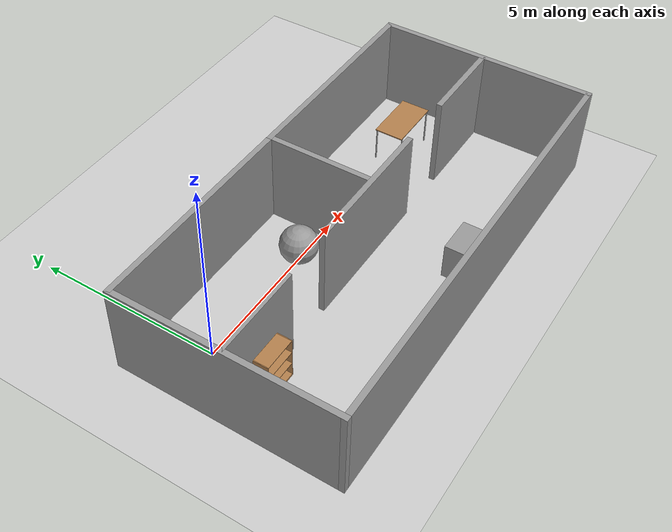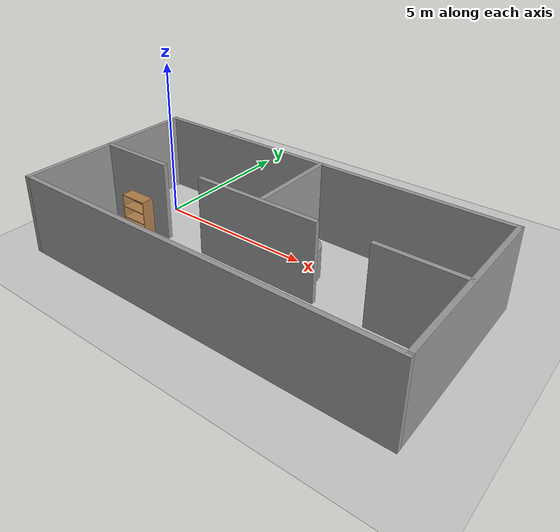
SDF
<sdf version="1.7">
 <world name="default">
  <light name="sun" type="directional">
   <pose>0 0 10 0 -0 0</pose>
   <diffuse>0.8 0.8 0.8 1</diffuse>
   <specular>0.2 0.2 0.2 1</specular>
   <attenuation>
    <range>1000</range>
    <constant>0.9</constant>
    <linear>0.01</linear>
    <quadratic>0.001</quadratic>
   </attenuation>
   <direction>-0.5 0.1 -0.9</direction>
   <spot><inner_angle>0</inner_angle><outer_angle>0</outer_angle><falloff>0</falloff></spot>
  </light>
  <model name="ground_plane">
   <static>1</static>
   <link name="link">
    <collision name="collision">
     <geometry><plane><normal>0 0 1</normal><size>100 100</size></plane></geometry>
     <surface><friction><ode><mu>100</mu><mu2>50</mu2></ode></friction></surface>
    </collision>
    <visual name="visual">
     <cast_shadows>0</cast_shadows>
     <geometry><plane><normal>0 0 1</normal><size>100 100</size></plane></geometry>
     <material>
      <script><uri>file://media/materials/scripts/gazebo.material</uri><name>Gazebo/Grey</name></script>
     </material>
    </visual>
   </link>
  </model>
  <gravity>0 0 -9.8</gravity>
  <magnetic_field>6e-06 2.3e-05 -4.2e-05</magnetic_field>
  <atmosphere type="adiabatic"/>
  <physics type="ode">
   <max_step_size>0.001</max_step_size>
   <real_time_factor>1</real_time_factor>
   <real_time_update_rate>1000</real_time_update_rate>
  </physics>
  <scene><ambient>0.4 0.4 0.4 1</ambient><background>0.7 0.7 0.7 1</background><shadows>1</shadows></scene>
  <audio><device>default</device></audio>
  <spherical_coordinates>
   <surface_model>EARTH_WGS84</surface_model>
   <latitude_deg>0</latitude_deg>
   <longitude_deg>0</longitude_deg>
   <elevation>0</elevation>
   <heading_deg>0</heading_deg>
  </spherical_coordinates>
  <model name="threerooms">
   <pose>5.56444 0.092078 0 0 -0 0</pose>
   <link name="Wall_21">
    <collision name="Wall_21_Collision">
     <geometry><box><size>3 0.15 2.5</size></box></geometry>
     <pose>0 0 1.25 0 -0 0</pose>
    </collision>
    <visual name="Wall_21_Visual">
     <pose>0 0 1.25 0 -0 0</pose>
     <geometry><box><size>3 0.15 2.5</size></box></geometry>
     <material>
      <script><uri>file://media/materials/scripts/gazebo.material</uri><name>Gazebo/Grey</name></script>
      <ambient>1 1 1 1</ambient>
     </material>
     <meta><layer>0</layer></meta>
    </visual>
    <pose>-0.909238 0.00585 0 0 -0 1.5708</pose>
   </link>
   <link name="Wall_22">
    <collision name="Wall_22_Collision">
     <geometry><box><size>6 0.15 2.5</size></box></geometry>
     <pose>0 0 1.25 0 -0 0</pose>
    </collision>
    <visual name="Wall_22_Visual">
     <pose>0 0 1.25 0 -0 0</pose>
     <geometry><box><size>6 0.15 2.5</size></box></geometry>
     <material>
      <script><uri>file://media/materials/scripts/gazebo.material</uri><name>Gazebo/Grey</name></script>
      <ambient>1 1 1 1</ambient>
     </material>
     <meta><layer>0</layer></meta>
    </visual>
    <pose>2.01576 1.43085 0 0 -0 0</pose>
   </link>
   <link name="Wall_23">
    <collision name="Wall_23_Collision">
     <geometry><box><size>6 0.15 2.5</size></box></geometry>
     <pose>0 0 1.25 0 -0 0</pose>
    </collision>
    <visual name="Wall_23_Visual">
     <pose>0 0 1.25 0 -0 0</pose>
     <geometry><box><size>6 0.15 2.5</size></box></geometry>
     <material>
      <script><uri>file://media/materials/scripts/gazebo.material</uri><name>Gazebo/Grey</name></script>
      <ambient>1 1 1 1</ambient>
     </material>
     <meta><layer>0</layer></meta>
    </visual>
    <pose>4.94076 -1.49415 0 0 -0 -1.5708</pose>
   </link>
   <link name="Wall_24">
    <collision name="Wall_24_Collision">
     <geometry><box><size>12 0.15 2.5</size></box></geometry>
     <pose>0 0 1.25 0 -0 0</pose>
    </collision>
    <visual name="Wall_24_Visual">
     <pose>0 0 1.25 0 -0 0</pose>
     <geometry><box><size>12 0.15 2.5</size></box></geometry>
     <material>
      <script><uri>file://media/materials/scripts/gazebo.material</uri><name>Gazebo/Grey</name></script>
      <ambient>1 1 1 1</ambient>
     </material>
     <meta><layer>0</layer></meta>
    </visual>
    <pose>-0.984238 -4.41915 0 0 -0 3.14159</pose>
   </link>
   <link name="Wall_25">
    <collision name="Wall_25_Collision">
     <geometry><box><size>6 0.15 2.5</size></box></geometry>
     <pose>0 0 1.25 0 -0 0</pose>
    </collision>
    <visual name="Wall_25_Visual">
     <pose>0 0 1.25 0 -0 0</pose>
     <geometry><box><size>6 0.15 2.5</size></box></geometry>
     <material>
      <script><uri>file://media/materials/scripts/gazebo.material</uri><name>Gazebo/Grey</name></script>
      <ambient>1 1 1 1</ambient>
     </material>
     <meta><layer>0</layer></meta>
    </visual>
    <pose>-6.90924 -1.49415 0 0 -0 1.5708</pose>
   </link>
   <link name="Wall_26">
    <collision name="Wall_26_Collision">
     <geometry><box><size>6.15 0.15 2.5</size></box></geometry>
     <pose>0 0 1.25 0 -0 0</pose>
    </collision>
    <visual name="Wall_26_Visual">
     <pose>0 0 1.25 0 -0 0</pose>
     <geometry><box><size>6.15 0.15 2.5</size></box></geometry>
     <material>
      <script><uri>file://media/materials/scripts/gazebo.material</uri><name>Gazebo/Grey</name></script>
      <ambient>1 1 1 1</ambient>
     </material>
     <meta><layer>0</layer></meta>
    </visual>
    <pose>-3.90924 1.43085 0 0 -0 0</pose>
   </link>
   <link name="Wall_28">
    <collision name="Wall_28_Collision">
     <geometry><box><size>2.5 0.15 2.5</size></box></geometry>
     <pose>0 0 1.25 0 -0 0</pose>
    </collision>
    <visual name="Wall_28_Visual">
     <pose>0 0 1.25 0 -0 0</pose>
     <geometry><box><size>2.5 0.15 2.5</size></box></geometry>
     <material>
      <script><uri>file://media/materials/scripts/gazebo.material</uri><name>Gazebo/Grey</name></script>
      <ambient>1 1 1 1</ambient>
     </material>
     <meta><layer>0</layer></meta>
    </visual>
    <pose>-5.67703 -1.47607 0 0 -0 0</pose>
   </link>
   <link name="Wall_30">
    <collision name="Wall_30_Collision">
     <geometry><box><size>4 0.15 2.5</size></box></geometry>
     <pose>0 0 1.25 0 -0 0</pose>
    </collision>
    <visual name="Wall_30_Visual">
     <pose>0 0 1.25 0 -0 0</pose>
     <geometry><box><size>4 0.15 2.5</size></box></geometry>
     <material>
      <script><uri>file://media/materials/scripts/gazebo.material</uri><name>Gazebo/Grey</name></script>
      <ambient>1 1 1 1</ambient>
     </material>
     <meta><layer>0</layer></meta>
    </visual>
    <pose>-1.07921 -1.44565 0 0 -0 0</pose>
   </link>
   <link name="Wall_33">
    <collision name="Wall_33_Collision">
     <geometry><box><size>2.5 0.15 2.5</size></box></geometry>
     <pose>0 0 1.25 0 -0 0</pose>
    </collision>
    <visual name="Wall_33_Visual">
     <pose>0 0 1.25 0 -0 0</pose>
     <geometry><box><size>2.5 0.15 2.5</size></box></geometry>
     <material>
      <script><uri>file://media/materials/scripts/gazebo.material</uri><name>Gazebo/Grey</name></script>
      <ambient>1 1 1 1</ambient>
     </material>
     <meta><layer>0</layer></meta>
    </visual>
    <pose>3.69892 -1.43044 0 0 -0 3.14159</pose>
   </link>
   <static>1</static>
  </model>
  <model name="bookshelf">
   <static>1</static>
   <link name="link">
    <inertial><mass>1</mass></inertial>
    <collision name="back">
     <pose>0 0.005 0.6 0 -0 0</pose>
     <geometry><box><size>0.9 0.01 1.2</size></box></geometry>
    </collision>
    <visual name="visual1">
     <pose>0 0.005 0.6 0 -0 0</pose>
     <geometry><box><size>0.9 0.01 1.2</size></box></geometry>
     <material>
      <script><uri>file://media/materials/scripts/gazebo.material</uri><name>Gazebo/Wood</name></script>
     </material>
    </visual>
    <collision name="left_side">
     <pose>0.45 -0.195 0.6 0 -0 0</pose>
     <geometry><box><size>0.02 0.4 1.2</size></box></geometry>
    </collision>
    <visual name="visual2">
     <pose>0.45 -0.195 0.6 0 -0 0</pose>
     <geometry><box><size>0.02 0.4 1.2</size></box></geometry>
     <material>
      <script><uri>file://media/materials/scripts/gazebo.material</uri><name>Gazebo/Wood</name></script>
     </material>
    </visual>
    <collision name="right_side">
     <pose>-0.45 -0.195 0.6 0 -0 0</pose>
     <geometry><box><size>0.02 0.4 1.2</size></box></geometry>
    </collision>
    <visual name="visual3">
     <pose>-0.45 -0.195 0.6 0 -0 0</pose>
     <geometry><box><size>0.02 0.4 1.2</size></box></geometry>
     <material>
      <script><uri>file://media/materials/scripts/gazebo.material</uri><name>Gazebo/Wood</name></script>
     </material>
    </visual>
    <collision name="bottom">
     <pose>0 -0.195 0.03 0 -0 0</pose>
     <geometry><box><size>0.88 0.4 0.06</size></box></geometry>
    </collision>
    <visual name="visual4">
     <pose>0 -0.195 0.03 0 -0 0</pose>
     <geometry><box><size>0.88 0.4 0.06</size></box></geometry>
     <material>
      <script><uri>file://media/materials/scripts/gazebo.material</uri><name>Gazebo/Wood</name></script>
     </material>
    </visual>
    <collision name="top">
     <pose>0 -0.195 1.19 0 -0 0</pose>
     <geometry><box><size>0.88 0.4 0.02</size></box></geometry>
    </collision>
    <visual name="visual5">
     <pose>0 -0.195 1.19 0 -0 0</pose>
     <geometry><box><size>0.88 0.4 0.02</size></box></geometry>
     <material>
      <script><uri>file://media/materials/scripts/gazebo.material</uri><name>Gazebo/Wood</name></script>
     </material>
    </visual>
    <collision name="low_shelf">
     <pose>0 -0.195 0.43 0 -0 0</pose>
     <geometry><box><size>0.88 0.4 0.02</size></box></geometry>
    </collision>
    <visual name="visual6">
     <pose>0 -0.195 0.43 0 -0 0</pose>
     <geometry><box><size>0.88 0.4 0.02</size></box></geometry>
     <material>
      <script><uri>file://media/materials/scripts/gazebo.material</uri><name>Gazebo/Wood</name></script>
     </material>
    </visual>
    <collision name="high_shelf">
     <pose>0 -0.195 0.8 0 -0 0</pose>
     <geometry><box><size>0.88 0.4 0.02</size></box></geometry>
    </collision>
    <visual name="visual7">
     <pose>0 -0.195 0.8 0 -0 0</pose>
     <geometry><box><size>0.88 0.4 0.02</size></box></geometry>
     <material>
      <script><uri>file://media/materials/scripts/gazebo.material</uri><name>Gazebo/Wood</name></script>
     </material>
    </visual>
   </link>
   <pose>0.057669 -1.46167 0 0 -0 0</pose>
  </model>
  <model name="table">
   <static>1</static>
   <link name="link">
    <collision name="surface">
     <pose>0 0 1 0 -0 0</pose>
     <geometry><box><size>1.5 0.8 0.03</size></box></geometry>
     <surface><friction><ode><mu>0.6</mu><mu2>0.6</mu2></ode></friction></surface>
    </collision>
    <visual name="visual1">
     <pose>0 0 1 0 -0 0</pose>
     <geometry><box><size>1.5 0.8 0.03</size></box></geometry>
     <material>
      <script><uri>file://media/materials/scripts/gazebo.material</uri><name>Gazebo/Wood</name></script>
     </material>
    </visual>
    <collision name="front_left_leg">
     <pose>0.68 0.38 0.5 0 -0 0</pose>
     <geometry><cylinder><radius>0.02</radius><length>1</length></cylinder></geometry>
    </collision>
    <visual name="front_left_leg_visual">
     <pose>0.68 0.38 0.5 0 -0 0</pose>
     <geometry><cylinder><radius>0.02</radius><length>1</length></cylinder></geometry>
     <material>
      <script><uri>file://media/materials/scripts/gazebo.material</uri><name>Gazebo/Grey</name></script>
     </material>
    </visual>
    <collision name="front_right_leg">
     <pose>0.68 -0.38 0.5 0 -0 0</pose>
     <geometry><cylinder><radius>0.02</radius><length>1</length></cylinder></geometry>
    </collision>
    <visual name="front_right_leg_visual">
     <pose>0.68 -0.38 0.5 0 -0 0</pose>
     <geometry><cylinder><radius>0.02</radius><length>1</length></cylinder></geometry>
     <material>
      <script><uri>file://media/materials/scripts/gazebo.material</uri><name>Gazebo/Grey</name></script>
     </material>
    </visual>
    <collision name="back_right_leg">
     <pose>-0.68 -0.38 0.5 0 -0 0</pose>
     <geometry><cylinder><radius>0.02</radius><length>1</length></cylinder></geometry>
    </collision>
    <visual name="back_right_leg_visual">
     <pose>-0.68 -0.38 0.5 0 -0 0</pose>
     <geometry><cylinder><radius>0.02</radius><length>1</length></cylinder></geometry>
     <material>
      <script><uri>file://media/materials/scripts/gazebo.material</uri><name>Gazebo/Grey</name></script>
     </material>
    </visual>
    <collision name="back_left_leg">
     <pose>-0.68 0.38 0.5 0 -0 0</pose>
     <geometry><cylinder><radius>0.02</radius><length>1</length></cylinder></geometry>
    </collision>
    <visual name="back_left_leg_visual">
     <pose>-0.68 0.38 0.5 0 -0 0</pose>
     <geometry><cylinder><radius>0.02</radius><length>1</length></cylinder></geometry>
     <material>
      <script><uri>file://media/materials/scripts/gazebo.material</uri><name>Gazebo/Grey</name></script>
     </material>
    </visual>
   </link>
   <pose>8.6679 -0.009049 0 0 -0 0</pose>
  </model>
  <model name="unit_box">
   <pose>5.52324 -3.70858 0.499995 1e-05 -0 0</pose>
   <link name="link">
    <inertial>
     <mass>1</mass>
     <inertia>
      <ixx>0.166667</ixx>
      <ixy>0</ixy>
      <ixz>0</ixz>
      <iyy>0.166667</iyy>
      <iyz>0</iyz>
      <izz>0.166667</izz>
     </inertia>
    </inertial>
    <collision name="collision"><geometry><box><size>1 1 1</size></box></geometry></collision>
    <visual name="visual">
     <geometry><box><size>1 1 1</size></box></geometry>
     <material>
      <script><name>Gazebo/Grey</name><uri>file://media/materials/scripts/gazebo.material</uri></script>
     </material>
    </visual>
   </link>
  </model>
  <model name="unit_sphere">
   <pose>3.59908 0.014424 0.5 0 -0 0</pose>
   <link name="link">
    <inertial>
     <mass>1</mass>
     <inertia><ixx>0.1</ixx><ixy>0</ixy><ixz>0</ixz><iyy>0.1</iyy><iyz>0</iyz><izz>0.1</izz></inertia>
    </inertial>
    <collision name="collision"><geometry><sphere><radius>0.5</radius></sphere></geometry></collision>
    <visual name="visual">
     <geometry><sphere><radius>0.5</radius></sphere></geometry>
     <material>
      <script><name>Gazebo/Grey</name><uri>file://media/materials/scripts/gazebo.material</uri></script>
     </material>
    </visual>
   </link>
  </model>
  <model name="unit_cylinder">
   <pose>5.49405 -0.459233 0.499997 3e-06 4e-06 -0</pose>
   <link name="link">
    <inertial>
     <mass>1</mass>
     <inertia><ixx>0.145833</ixx><ixy>0</ixy><ixz>0</ixz><iyy>0.145833</iyy><iyz>0</iyz><izz>0.125</izz></inertia>
    </inertial>
    <collision name="collision">
     <geometry><cylinder><radius>0.5</radius><length>1</length></cylinder></geometry>
    </collision>
    <visual name="visual">
     <geometry><cylinder><radius>0.5</radius><length>1</length></cylinder></geometry>
     <material>
      <script><name>Gazebo/Grey</name><uri>file://media/materials/scripts/gazebo.material</uri></script>
     </material>
    </visual>
   </link>
  </model>
 </world>
</sdf>
